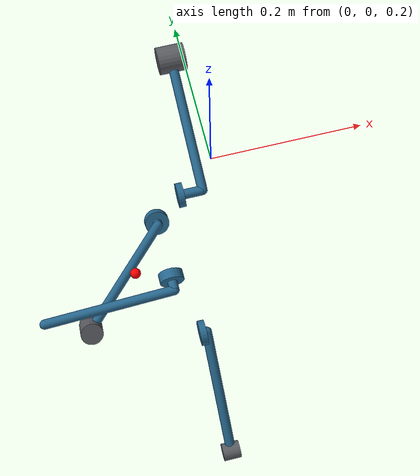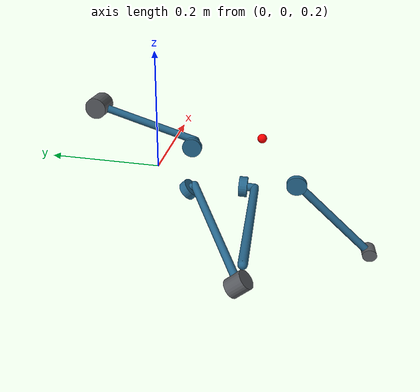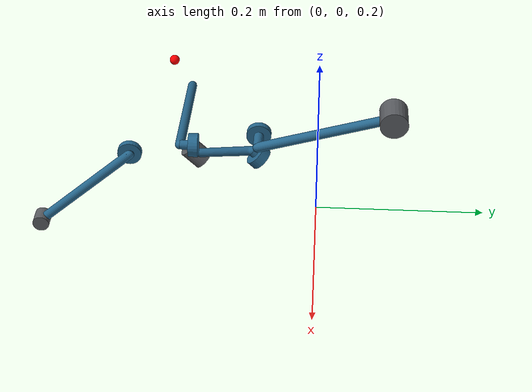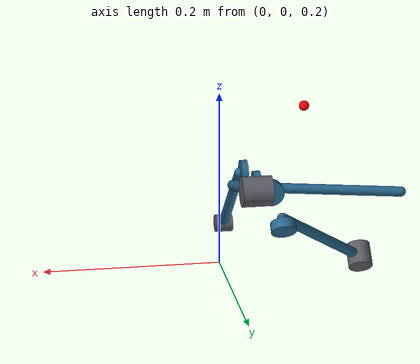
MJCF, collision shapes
<mujoco model="gello_franka">
  <compiler angle="radian" autolimits="true" meshdir="meshes" />
  <option timestep="0.002" integrator="implicitfast" gravity="0 0 -9.81" iterations="100" ls_iterations="50" />
  <asset>
    <mesh name="base" file="base.stl" scale="0.001 0.001 0.001" inertia="legacy" />
    <mesh name="L1" file="L1.stl" scale="0.001 0.001 0.001" inertia="legacy" />
    <mesh name="L2" file="L2.stl" scale="0.001 0.001 0.001" inertia="legacy" />
    <mesh name="L3" file="L3.stl" scale="0.001 0.001 0.001" inertia="legacy" />
    <mesh name="L4" file="L4.stl" scale="0.001 0.001 0.001" inertia="legacy" />
    <mesh name="L5" file="L5.stl" scale="0.001 0.001 0.001" inertia="legacy" />
    <mesh name="L6" file="L6.stl" scale="0.001 0.001 0.001" inertia="legacy" />
    <mesh name="handle" file="handle.stl" scale="0.001 0.001 0.001" inertia="legacy" />
    <mesh name="servo" file="servo.stl" scale="0.001 0.001 0.001" inertia="legacy" />
    <mesh name="servo_single" file="servo_single.stl" scale="0.001 0.001 0.001" inertia="legacy" />
    <mesh name="trigger" file="trigger.stl" scale="0.001 0.001 0.001" inertia="legacy" />
  </asset>
  <worldbody>
    <body name="lead_base" pos="0 0 0" quat="1 0 0 0">
      <geom name="printed_base" type="mesh" mesh="base" density="100" rgba="0.93 0.92 0.88 1" contype="0" conaffinity="0" />
      <geom name="servo1" type="box" pos="-0.065281904581567296 -5.8254716867520228e-05 0.022546155186152723" quat="0.47982727111171003 0.52167156585229457 0.51938982460010719 0.47734555343257962" mass="0.018" rgba="0 0 0 0" size="0.009105755772092692 0.011051149327476129 0.015989273239492972" group="3" contype="0" conaffinity="0" />
      <body name="lead_link1" pos="-0.07225 0 0.0363" quat="1 0 0 0">
        <joint name="lead_joint1" type="hinge" axis="0 0 1" damping="0.01" armature="0.002" frictionloss="0.03" range="-2.8973 2.8973" stiffness="0.025018764073054794" springref="2.8972999999999995" />
        <geom name="printed_link1" type="mesh" mesh="L1" pos="0 0 0" quat="1 0 0 0" density="100" rgba="0.93 0.92 0.88 1" contype="0" conaffinity="0" />
        <geom name="servo2" type="box" pos="-2.5253645528376667e-05 -5.5724486651656165e-05 0.093709069326266464" quat="0.013917031524625695 0.70703099348465159 0.70696981281632054 0.010352499799917869" mass="0.018" rgba="0 0 0 0" size="0.0088431563840316967 0.011775031092503089 0.015626773765056633" group="3" contype="0" conaffinity="0" />
        <body name="lead_link2" pos="0 0 0.1002" quat="0.2707281011 0.6532275984 0.2707281011 0.6532275984">
          <joint name="lead_joint2" type="hinge" axis="0 0 1" damping="0.01" armature="0.002" frictionloss="0.03" range="-1.7628 1.7628" stiffness="0.8871039987604734" springref="-0.7565536134415676" />
          <geom name="printed_link2" type="mesh" mesh="L2" pos="0 -0.01125 0" quat="0.707106781187 0 -0.707106781187 0" density="100" rgba="0.93 0.92 0.88 1" contype="0" conaffinity="0" />
          <geom name="servo3" type="box" pos="-5.8254716867520228e-05 0.083496155186152721 -0.0080319045815673007" quat="0.9991171074983457 0.041944282954056056 -0.0023817294656588617 -9.9988213471535661e-05" mass="0.018" rgba="0 0 0 0" size="0.009105755772092692 0.011051149327476129 0.015989273239492972" group="3" contype="0" conaffinity="0" />
          <body name="lead_link3" pos="0 0.09725 -0.015" quat="-0.5 0.5 0.5 0.5">
            <joint name="lead_joint3" type="hinge" axis="0 0 1" damping="0.01" armature="0.002" frictionloss="0.03" range="-2.8973 2.8973" stiffness="0.02072950641540847" springref="2.8973" />
            <geom name="printed_link3" type="mesh" mesh="L3" pos="-0.015 0 0" quat="0.707106781187 0.707106781187 0 0" density="100" rgba="0.93 0.92 0.88 1" contype="0" conaffinity="0" />
            <geom name="servo4" type="box" pos="-2.5253645528376667e-05 0.041305724486651658 0.052240930673733532" quat="-0.70703099348465159 0.013917031524625695 -0.010352499799917869 0.70696981281632054" mass="0.018" rgba="0 0 0 0" size="0.0088431563840316967 0.011775031092503089 0.015626773765056633" group="3" contype="0" conaffinity="0" />
            <body name="lead_link4" pos="0 0.04125 0.04575" quat="0.2706615772 0.653255165 0.2706615772 0.653255165">
              <joint name="lead_joint4" type="hinge" axis="0 0 1" damping="0.01" armature="0.002" frictionloss="0.03" range="-3.0718 -0.0698" stiffness="0.055073164172919395" springref="-3.0718" />
              <geom name="printed_link4" type="mesh" mesh="L4" pos="-0.044 0 0" quat="1 0 0 0" density="100" rgba="0.93 0.92 0.88 1" contype="0" conaffinity="0" />
              <geom name="servo5" type="box" pos="-0.03428190458157622 0.062746155186162014 5.8254716867445669e-05" quat="-0.7081666189672351 -0.029588384565016963 -0.70479834485499882 0.029729789252585792" mass="0.018" rgba="0 0 0 0" size="0.009105755772092692 0.011051149327476129 0.015989273239492972" group="3" contype="0" conaffinity="0" />
              <body name="lead_link5" pos="-0.04125 0.0765 0" quat="-0.5 0.5 0.5 0.5">
                <joint name="lead_joint5" type="hinge" axis="0 0 1" damping="0.01" armature="0.002" frictionloss="0.03" range="-2.8973 2.8973" stiffness="0.0" springref="0" />
                <geom name="printed_link5" type="mesh" mesh="L5" pos="0 0 0" quat="1 0 0 0" density="100" rgba="0.93 0.92 0.88 1" contype="0" conaffinity="0" />
                <geom name="servo6" type="box" pos="-2.5253645528376667e-05 -5.5724486651656165e-05 0.079009069326266473" quat="0.013917031524625695 0.70703099348465159 0.70696981281632054 0.010352499799917869" mass="0.018" rgba="0 0 0 0" size="0.0088431563840316967 0.011775031092503089 0.015626773765056633" group="3" contype="0" conaffinity="0" />
                <body name="lead_link6" pos="0 0 0.0855" quat="-0.4999490791 0.5000509157 -0.4999490791 0.5000509157">
                  <joint name="lead_joint6" type="hinge" axis="0 0 1" damping="0.01" armature="0.002" frictionloss="0.03" range="-0.0175 3.7525" stiffness="0.0" springref="0" />
                  <geom name="printed_link6" type="mesh" mesh="L6" pos="-0.059 0 0" quat="1 0 0 0" density="100" rgba="0.93 0.92 0.88 1" contype="0" conaffinity="0" />
                  <geom name="servo7" type="box" pos="-0.052055104581576216 0.039746155186162008 5.8254716867445669e-05" quat="-0.7081666189672351 -0.029588384565016963 -0.70479834485499882 0.029729789252585792" mass="0.018" rgba="0 0 0 0" size="0.009105755772092692 0.011051149327476129 0.015989273239492972" group="3" contype="0" conaffinity="0" />
                  <body name="lead_link7" pos="-0.0590232 0.0535 0" quat="0.6533353406 -0.6533353406 -0.2704679883 -0.2704679883">
                    <joint name="lead_joint7" type="hinge" axis="0 0 1" damping="0.01" armature="0.002" frictionloss="0.03" range="-2.8973 2.8973" stiffness="0.0" springref="0" />
                    <geom name="servo_trigger" type="box" pos="0.0071798025054070702 -0.0061380185847465345 0.024108854279015188" quat="0.72536681421762084 0.04830396691213755 0.68498946542390515 -0.047949388640871837" mass="0.018" rgba="0 0 0 0" size="0.009105755772092692 0.011051149327476129 0.015989273239492972" group="3" contype="0" conaffinity="0" />
                    <geom name="visual_servo_trigger" type="mesh" mesh="servo_single" pos="0.00061347460766 0.00146990767716 0.0236859974613" quat="0.525482745499 -0.5 0.5 0.473146789256" mass="0" rgba="0.12 0.12 0.14 1" contype="0" conaffinity="0" />
                    <body name="lead_handle">
                      <geom name="printed_handle" type="mesh" mesh="handle" pos="0.0142112544868 -0.000744780288481 0.0217163417801" quat="0.707106781187 0.706137715918 -0.0370071095593 0" density="450" rgba="0.93 0.92 0.88 1" contype="0" conaffinity="0" />
                      <body name="lead_trigger" pos="0.000953658323239 0.00796099965307 0.0236859974613" quat="0.525482745499 -0.5 0.5 0.473146789256">
                        <geom name="printed_trigger" type="mesh" mesh="trigger" pos="0 0 -0.008" quat="0.707106781187 0.707106781187 0 0" density="100" rgba="0.93 0.92 0.88 1" contype="0" conaffinity="0" />
                      </body>
                      <site name="lead_ee_site" pos="-0.0576480385247 0.0030212056791 -7.95146511684e-05" size="0.006" rgba="1 0 0 1" />
                    </body>
                  </body>
                  <geom name="visual_servo7" type="mesh" mesh="servo_single" pos="-0.0590232 0.047 0" quat="-0.5 0.5 -0.5 -0.5" mass="0" rgba="0.12 0.12 0.14 1" contype="0" conaffinity="0" />
                  <geom name="printed_balance_hub_6" type="cylinder" size="0.015 0.004" pos="0 0 0.02" density="650" rgba=".15 .4 .55 1" contype="0" conaffinity="0" />
                  <geom name="printed_balance_standoff_6" type="cylinder" size=".006" fromto="0 0 0.02 0 0 0.025" density="650" rgba=".15 .4 .55 1" contype="0" conaffinity="0" />
                  <geom name="printed_balance_support_6" type="capsule" size=".006" fromto="0.0 0.0 0.025 0.10647728994 -0.11979688004 0.025" density="650" rgba=".15 .4 .55 1" contype="0" conaffinity="0" />
                  <geom name="counterweight_6" type="cylinder" size="0.0106048194658 0.0106048194658" pos="0.10647728994 -0.11979688004 0.025" density="7800" rgba=".35 .36 .38 1" contype="0" conaffinity="0" />
                </body>
                <geom name="visual_servo6" type="mesh" mesh="servo" pos="0.008 0 0.0855" quat="0.5 0.5 0.5 0.5" mass="0" rgba="0.12 0.12 0.14 1" contype="0" conaffinity="0" />
                <geom name="printed_balance_hub_5" type="cylinder" size="0.015 0.006" pos="0 0 0.008" density="650" rgba=".15 .4 .55 1" contype="0" conaffinity="0" />
                <geom name="printed_balance_standoff_5" type="cylinder" size=".006" fromto="0 0 0.008 0 0 0.025" density="650" rgba=".15 .4 .55 1" contype="0" conaffinity="0" />
                <geom name="printed_balance_support_5" type="capsule" size=".006" fromto="0.0 0.0 0.025 -0.16 -0.013492482246 0.025" density="650" rgba=".15 .4 .55 1" contype="0" conaffinity="0" />
                <geom name="counterweight_5" type="cylinder" size="0.00344285322387 0.00344285322387" pos="-0.16 -0.013492482246 0.025" density="7800" rgba=".35 .36 .38 1" contype="0" conaffinity="0" />
              </body>
              <geom name="visual_servo5" type="mesh" mesh="servo_single" pos="-0.04125 0.07 0" quat="-0.5 0.5 -0.5 -0.5" mass="0" rgba="0.12 0.12 0.14 1" contype="0" conaffinity="0" />
              <geom name="printed_balance_hub_4" type="cylinder" size="0.015 0.004" pos="0 0 0.0325" density="650" rgba=".15 .4 .55 1" contype="0" conaffinity="0" />
              <geom name="printed_balance_standoff_4" type="cylinder" size=".006" fromto="0 0 0.0325 0 0 0.06" density="650" rgba=".15 .4 .55 1" contype="0" conaffinity="0" />
              <geom name="printed_balance_support_4" type="capsule" size=".006" fromto="0.0 0.0 0.06 0.04717632978 -0.16 0.06" density="650" rgba=".15 .4 .55 1" contype="0" conaffinity="0" />
              <geom name="counterweight_4" type="cylinder" size="0.0169047286733 0.0169047286733" pos="0.04717632978 -0.16 0.06" density="7800" rgba=".35 .36 .38 1" contype="0" conaffinity="0" />
            </body>
            <geom name="visual_servo4" type="mesh" mesh="servo" pos="0.008 0.04125 0.04575" quat="-0.5 0.5 -0.5 0.5" mass="0" rgba="0.12 0.12 0.14 1" contype="0" conaffinity="0" />
            <geom name="printed_balance_hub_3" type="cylinder" size="0.015 0.006" pos="0 0 0.008" density="650" rgba=".15 .4 .55 1" contype="0" conaffinity="0" />
            <geom name="printed_balance_standoff_3" type="cylinder" size=".006" fromto="0 0 0.008 0 0 0.02" density="650" rgba=".15 .4 .55 1" contype="0" conaffinity="0" />
            <geom name="printed_balance_support_3" type="capsule" size=".006" fromto="0.0 0.0 0.02 -0.10891576022 -0.11735840976 0.02" density="650" rgba=".15 .4 .55 1" contype="0" conaffinity="0" />
            <geom name="counterweight_3" type="cylinder" size="0.0143277922782 0.0143277922782" pos="-0.10891576022 -0.11735840976 0.02" density="7800" rgba=".35 .36 .38 1" contype="0" conaffinity="0" />
          </body>
          <geom name="visual_servo3" type="mesh" mesh="servo_single" pos="0 0.09075 -0.015" quat="0.707106781187 -0.707106781187 0 -0" mass="0" rgba="0.12 0.12 0.14 1" contype="0" conaffinity="0" />
        </body>
        <geom name="visual_servo2" type="mesh" mesh="servo" pos="0.008 0 0.1002" quat="0.5 0.5 0.5 0.5" mass="0" rgba="0.12 0.12 0.14 1" contype="0" conaffinity="0" />
      </body>
      <geom name="visual_servo1" type="mesh" mesh="servo_single" pos="-0.07225 0 0.0298" quat="0.707106781187 0 0 0.707106781187" mass="0" rgba="0.12 0.12 0.14 1" contype="0" conaffinity="0" />
    </body>
  </worldbody>
  <keyframe>
    <key name="home" qpos="0 -0.785 0 -2.356 0 1.571 0.785" />
  </keyframe>
</mujoco>
